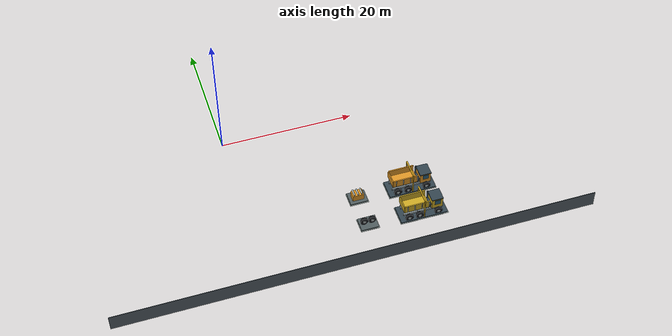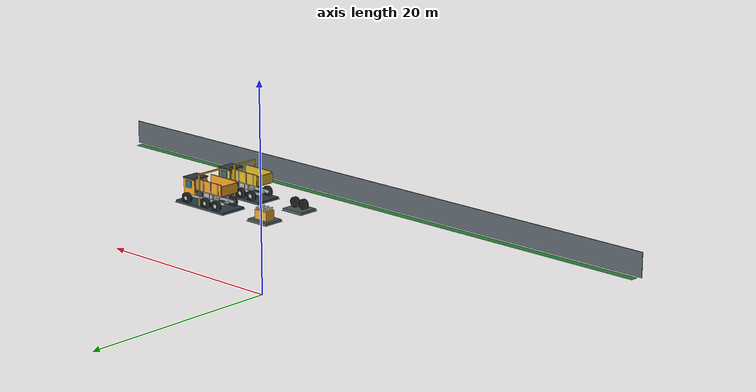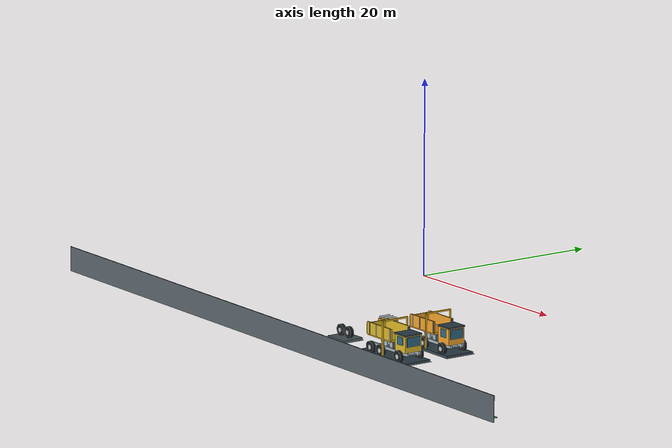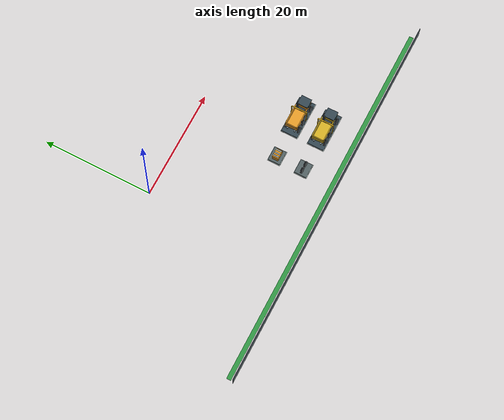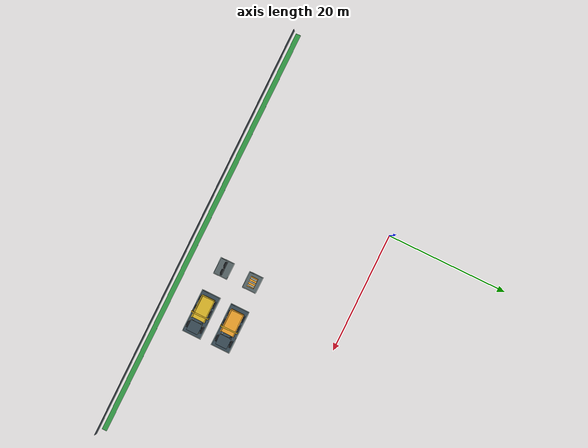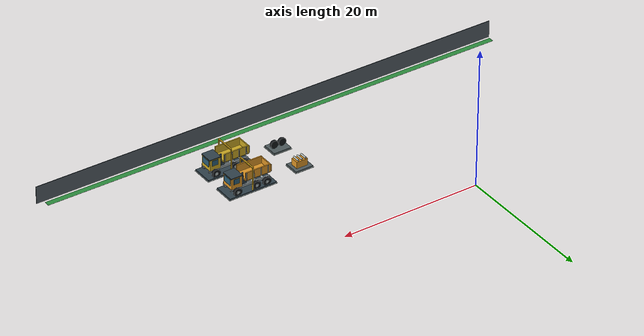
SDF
<sdf version="1.7">
 <world name="warehouse_layout_demo">
  <include><uri>model://sun</uri></include>
  <model name="pedestrian_south_east">
   <static>true</static>
   <pose>12.45 -26.65 0.055 0 0 0</pose>
   <link name="marking">
    <visual name="visual">
     <geometry><box><size>68.9 0.8 0.012</size></box></geometry>
     <material><ambient>0.18 0.57 0.25 1</ambient><diffuse>0.18 0.57 0.25 1</diffuse></material>
    </visual>
   </link>
  </model>
  <model name="south_fence_east">
   <static>true</static>
   <pose>12.85 -27.5 1.25 0 0 0</pose>
   <link name="link">
    <collision name="collision">
     <geometry><box><size>70.1 0.09 2.5</size></box></geometry>
     <surface><friction><ode><mu>0.9</mu><mu2>0.9</mu2></ode></friction></surface>
    </collision>
    <visual name="visual">
     <geometry><box><size>70.1 0.09 2.5</size></box></geometry>
     <material><ambient>0.33 0.37 0.40 1</ambient><diffuse>0.33 0.37 0.40 1</diffuse></material>
    </visual>
   </link>
  </model>
  <model name="vehicle_stage_5_line_1_se_pad">
   <static>true</static>
   <pose>24.0 -21.0 0.012 0 0 0</pose>
   <link name="marking">
    <visual name="visual">
     <geometry><box><size>7.2 3.2 0.012</size></box></geometry>
     <material><ambient>0.72 0.79 0.78 1</ambient><diffuse>0.72 0.79 0.78 1</diffuse></material>
    </visual>
   </link>
  </model>
  <model name="vehicle_stage_5_line_1_se">
   <static>true</static>
   <pose>24.0 -21.0 0 0 0 0</pose>
   <link name="fixture">
    <collision name="collision">
     <pose>0 0 1.9 0 0 0</pose>
     <geometry><box><size>7.0 3.0 3.8</size></box></geometry>
    </collision>
    <visual name="service_platform">
     <pose>0 0 0.11 0 0 0</pose>
     <geometry><box><size>7.0 3.0 0.22</size></box></geometry>
     <material><ambient>0.20 0.27 0.31 1</ambient><diffuse>0.20 0.27 0.31 1</diffuse></material>
    </visual>
    <visual name="chassis_rail_0">
     <pose>0 -0.66 0.85 0 0 0</pose>
     <geometry><box><size>5.9 0.19 0.28</size></box></geometry>
     <material><ambient>0.63 0.68 0.70 1</ambient><diffuse>0.63 0.68 0.70 1</diffuse></material>
    </visual>
    <visual name="haul_tire_0_0">
     <pose>-2.2 -1.18 0.63 1.57079632679 0 0</pose>
     <geometry><cylinder><radius>0.58</radius><length>0.32</length></cylinder></geometry>
     <material><ambient>0.08 0.09 0.10 1</ambient><diffuse>0.08 0.09 0.10 1</diffuse></material>
    </visual>
    <visual name="tire_hub_0_0">
     <pose>-2.2 -1.18 0.63 1.57079632679 0 0</pose>
     <geometry><cylinder><radius>0.23</radius><length>0.34</length></cylinder></geometry>
     <material><ambient>0.70 0.74 0.74 1</ambient><diffuse>0.70 0.74 0.74 1</diffuse></material>
    </visual>
    <visual name="haul_tire_0_1">
     <pose>-0.65 -1.18 0.63 1.57079632679 0 0</pose>
     <geometry><cylinder><radius>0.58</radius><length>0.32</length></cylinder></geometry>
     <material><ambient>0.08 0.09 0.10 1</ambient><diffuse>0.08 0.09 0.10 1</diffuse></material>
    </visual>
    <visual name="tire_hub_0_1">
     <pose>-0.65 -1.18 0.63 1.57079632679 0 0</pose>
     <geometry><cylinder><radius>0.23</radius><length>0.34</length></cylinder></geometry>
     <material><ambient>0.70 0.74 0.74 1</ambient><diffuse>0.70 0.74 0.74 1</diffuse></material>
    </visual>
    <visual name="haul_tire_0_2">
     <pose>2.15 -1.18 0.63 1.57079632679 0 0</pose>
     <geometry><cylinder><radius>0.58</radius><length>0.32</length></cylinder></geometry>
     <material><ambient>0.08 0.09 0.10 1</ambient><diffuse>0.08 0.09 0.10 1</diffuse></material>
    </visual>
    <visual name="tire_hub_0_2">
     <pose>2.15 -1.18 0.63 1.57079632679 0 0</pose>
     <geometry><cylinder><radius>0.23</radius><length>0.34</length></cylinder></geometry>
     <material><ambient>0.70 0.74 0.74 1</ambient><diffuse>0.70 0.74 0.74 1</diffuse></material>
    </visual>
    <visual name="chassis_rail_1">
     <pose>0 0.66 0.85 0 0 0</pose>
     <geometry><box><size>5.9 0.19 0.28</size></box></geometry>
     <material><ambient>0.63 0.68 0.70 1</ambient><diffuse>0.63 0.68 0.70 1</diffuse></material>
    </visual>
    <visual name="haul_tire_1_0">
     <pose>-2.2 1.18 0.63 1.57079632679 0 0</pose>
     <geometry><cylinder><radius>0.58</radius><length>0.32</length></cylinder></geometry>
     <material><ambient>0.08 0.09 0.10 1</ambient><diffuse>0.08 0.09 0.10 1</diffuse></material>
    </visual>
    <visual name="tire_hub_1_0">
     <pose>-2.2 1.18 0.63 1.57079632679 0 0</pose>
     <geometry><cylinder><radius>0.23</radius><length>0.34</length></cylinder></geometry>
     <material><ambient>0.70 0.74 0.74 1</ambient><diffuse>0.70 0.74 0.74 1</diffuse></material>
    </visual>
    <visual name="haul_tire_1_1">
     <pose>-0.65 1.18 0.63 1.57079632679 0 0</pose>
     <geometry><cylinder><radius>0.58</radius><length>0.32</length></cylinder></geometry>
     <material><ambient>0.08 0.09 0.10 1</ambient><diffuse>0.08 0.09 0.10 1</diffuse></material>
    </visual>
    <visual name="tire_hub_1_1">
     <pose>-0.65 1.18 0.63 1.57079632679 0 0</pose>
     <geometry><cylinder><radius>0.23</radius><length>0.34</length></cylinder></geometry>
     <material><ambient>0.70 0.74 0.74 1</ambient><diffuse>0.70 0.74 0.74 1</diffuse></material>
    </visual>
    <visual name="haul_tire_1_2">
     <pose>2.15 1.18 0.63 1.57079632679 0 0</pose>
     <geometry><cylinder><radius>0.58</radius><length>0.32</length></cylinder></geometry>
     <material><ambient>0.08 0.09 0.10 1</ambient><diffuse>0.08 0.09 0.10 1</diffuse></material>
    </visual>
    <visual name="tire_hub_1_2">
     <pose>2.15 1.18 0.63 1.57079632679 0 0</pose>
     <geometry><cylinder><radius>0.23</radius><length>0.34</length></cylinder></geometry>
     <material><ambient>0.70 0.74 0.74 1</ambient><diffuse>0.70 0.74 0.74 1</diffuse></material>
    </visual>
    <visual name="drive_axle_0">
     <pose>-2.2 0 0.68 1.57079632679 0 0</pose>
     <geometry><cylinder><radius>0.15</radius><length>2.38</length></cylinder></geometry>
     <material><ambient>0.63 0.68 0.70 1</ambient><diffuse>0.63 0.68 0.70 1</diffuse></material>
    </visual>
    <visual name="drive_axle_1">
     <pose>-0.65 0 0.68 1.57079632679 0 0</pose>
     <geometry><cylinder><radius>0.15</radius><length>2.38</length></cylinder></geometry>
     <material><ambient>0.63 0.68 0.70 1</ambient><diffuse>0.63 0.68 0.70 1</diffuse></material>
    </visual>
    <visual name="drive_axle_2">
     <pose>2.15 0 0.68 1.57079632679 0 0</pose>
     <geometry><cylinder><radius>0.15</radius><length>2.38</length></cylinder></geometry>
     <material><ambient>0.63 0.68 0.70 1</ambient><diffuse>0.63 0.68 0.70 1</diffuse></material>
    </visual>
    <visual name="diesel_engine">
     <pose>1.15 0 1.26 0 0 0</pose>
     <geometry><box><size>1.38 1.22 0.83</size></box></geometry>
     <material><ambient>0.20 0.27 0.31 1</ambient><diffuse>0.20 0.27 0.31 1</diffuse></material>
    </visual>
    <visual name="gearbox">
     <pose>0.08 0 1.12 0 0 0</pose>
     <geometry><box><size>0.82 0.76 0.6</size></box></geometry>
     <material><ambient>0.63 0.68 0.70 1</ambient><diffuse>0.63 0.68 0.70 1</diffuse></material>
    </visual>
    <visual name="radiator_fan">
     <pose>1.98 0 1.29 1.57079632679 0 0</pose>
     <geometry><cylinder><radius>0.41</radius><length>0.15</length></cylinder></geometry>
     <material><ambient>0.76 0.80 0.79 1</ambient><diffuse>0.76 0.80 0.79 1</diffuse></material>
    </visual>
    <visual name="operator_cab">
     <pose>2.08 0 1.82 0 0 0</pose>
     <geometry><box><size>1.6 1.83 1.62</size></box></geometry>
     <material><ambient>0.82 0.68 0.14 1</ambient><diffuse>0.82 0.68 0.14 1</diffuse></material>
    </visual>
    <visual name="cab_roof">
     <pose>2.08 0 2.66 0 0 0</pose>
     <geometry><box><size>1.72 1.91 0.14</size></box></geometry>
     <material><ambient>0.20 0.27 0.31 1</ambient><diffuse>0.20 0.27 0.31 1</diffuse></material>
    </visual>
    <visual name="windshield">
     <pose>2.91 0 2.03 0 0 0</pose>
     <geometry><box><size>0.045 1.48 0.91</size></box></geometry>
     <material><ambient>0.17 0.38 0.48 1</ambient><diffuse>0.17 0.38 0.48 1</diffuse></material>
    </visual>
    <visual name="exhaust_stack">
     <pose>1.14 0.76 2.15 0.0 0 0</pose>
     <geometry><cylinder><radius>0.12</radius><length>1.57</length></cylinder></geometry>
     <material><ambient>0.20 0.27 0.31 1</ambient><diffuse>0.20 0.27 0.31 1</diffuse></material>
    </visual>
    <visual name="cab_side_glass_0">
     <pose>2.11 -0.95 2.08 0 0 0</pose>
     <geometry><box><size>0.87 0.035 0.76</size></box></geometry>
     <material><ambient>0.17 0.38 0.48 1</ambient><diffuse>0.17 0.38 0.48 1</diffuse></material>
    </visual>
    <visual name="cab_side_glass_1">
     <pose>2.11 0.95 2.08 0 0 0</pose>
     <geometry><box><size>0.87 0.035 0.76</size></box></geometry>
     <material><ambient>0.17 0.38 0.48 1</ambient><diffuse>0.17 0.38 0.48 1</diffuse></material>
    </visual>
    <visual name="dump_bed_floor">
     <pose>-1.01 0 1.78 0 0 0</pose>
     <geometry><box><size>3.75 2.15 0.22</size></box></geometry>
     <material><ambient>0.82 0.68 0.14 1</ambient><diffuse>0.82 0.68 0.14 1</diffuse></material>
    </visual>
    <visual name="dump_bed_side_0">
     <pose>-1.01 -1.05 2.37 0 0 0</pose>
     <geometry><box><size>3.75 0.15 1.15</size></box></geometry>
     <material><ambient>0.82 0.68 0.14 1</ambient><diffuse>0.82 0.68 0.14 1</diffuse></material>
    </visual>
    <visual name="bed_rib_0_0">
     <pose>-2.46 -1.1235000000000002 2.37 0 0 0</pose>
     <geometry><box><size>0.13 0.08 1.1</size></box></geometry>
     <material><ambient>0.63 0.68 0.70 1</ambient><diffuse>0.63 0.68 0.70 1</diffuse></material>
    </visual>
    <visual name="bed_rib_0_1">
     <pose>-1.39 -1.1235000000000002 2.37 0 0 0</pose>
     <geometry><box><size>0.13 0.08 1.1</size></box></geometry>
     <material><ambient>0.63 0.68 0.70 1</ambient><diffuse>0.63 0.68 0.70 1</diffuse></material>
    </visual>
    <visual name="bed_rib_0_2">
     <pose>-0.32 -1.1235000000000002 2.37 0 0 0</pose>
     <geometry><box><size>0.13 0.08 1.1</size></box></geometry>
     <material><ambient>0.63 0.68 0.70 1</ambient><diffuse>0.63 0.68 0.70 1</diffuse></material>
    </visual>
    <visual name="bed_rib_0_3">
     <pose>0.75 -1.1235000000000002 2.37 0 0 0</pose>
     <geometry><box><size>0.13 0.08 1.1</size></box></geometry>
     <material><ambient>0.63 0.68 0.70 1</ambient><diffuse>0.63 0.68 0.70 1</diffuse></material>
    </visual>
    <visual name="dump_bed_side_1">
     <pose>-1.01 1.05 2.37 0 0 0</pose>
     <geometry><box><size>3.75 0.15 1.15</size></box></geometry>
     <material><ambient>0.82 0.68 0.14 1</ambient><diffuse>0.82 0.68 0.14 1</diffuse></material>
    </visual>
    <visual name="bed_rib_1_0">
     <pose>-2.46 1.1235000000000002 2.37 0 0 0</pose>
     <geometry><box><size>0.13 0.08 1.1</size></box></geometry>
     <material><ambient>0.63 0.68 0.70 1</ambient><diffuse>0.63 0.68 0.70 1</diffuse></material>
    </visual>
    <visual name="bed_rib_1_1">
     <pose>-1.39 1.1235000000000002 2.37 0 0 0</pose>
     <geometry><box><size>0.13 0.08 1.1</size></box></geometry>
     <material><ambient>0.63 0.68 0.70 1</ambient><diffuse>0.63 0.68 0.70 1</diffuse></material>
    </visual>
    <visual name="bed_rib_1_2">
     <pose>-0.32 1.1235000000000002 2.37 0 0 0</pose>
     <geometry><box><size>0.13 0.08 1.1</size></box></geometry>
     <material><ambient>0.63 0.68 0.70 1</ambient><diffuse>0.63 0.68 0.70 1</diffuse></material>
    </visual>
    <visual name="bed_rib_1_3">
     <pose>0.75 1.1235000000000002 2.37 0 0 0</pose>
     <geometry><box><size>0.13 0.08 1.1</size></box></geometry>
     <material><ambient>0.63 0.68 0.70 1</ambient><diffuse>0.63 0.68 0.70 1</diffuse></material>
    </visual>
    <visual name="rear_gate">
     <pose>-2.93 0 2.29 0 0 0</pose>
     <geometry><box><size>0.15 2.2 1.0</size></box></geometry>
     <material><ambient>0.82 0.68 0.14 1</ambient><diffuse>0.82 0.68 0.14 1</diffuse></material>
    </visual>
    <visual name="hydraulic_lift_left">
     <pose>-0.78 -0.48 1.37 0.0 0 0</pose>
     <geometry><cylinder><radius>0.18</radius><length>1.0</length></cylinder></geometry>
     <material><ambient>0.63 0.68 0.70 1</ambient><diffuse>0.63 0.68 0.70 1</diffuse></material>
    </visual>
    <visual name="hydraulic_lift_right">
     <pose>-0.78 0.48 1.37 0.0 0 0</pose>
     <geometry><cylinder><radius>0.18</radius><length>1.0</length></cylinder></geometry>
     <material><ambient>0.63 0.68 0.70 1</ambient><diffuse>0.63 0.68 0.70 1</diffuse></material>
    </visual>
    <visual name="test_gantry_post_0">
     <pose>0 -1.42 1.86 0 0 0</pose>
     <geometry><box><size>0.13 0.13 3.52</size></box></geometry>
     <material><ambient>0.91 0.72 0.12 1</ambient><diffuse>0.91 0.72 0.12 1</diffuse></material>
    </visual>
    <visual name="test_gantry_post_1">
     <pose>0 1.42 1.86 0 0 0</pose>
     <geometry><box><size>0.13 0.13 3.52</size></box></geometry>
     <material><ambient>0.91 0.72 0.12 1</ambient><diffuse>0.91 0.72 0.12 1</diffuse></material>
    </visual>
    <visual name="test_gantry_beam">
     <pose>0 0 3.59 0 0 0</pose>
     <geometry><box><size>0.18 2.86 0.13</size></box></geometry>
     <material><ambient>0.91 0.72 0.12 1</ambient><diffuse>0.91 0.72 0.12 1</diffuse></material>
    </visual>
   </link>
  </model>
  <model name="assembly_kit_1_line_1_se_pad">
   <static>true</static>
   <pose>16.0 -21.0 0.012 0 0 0</pose>
   <link name="marking">
    <visual name="visual">
     <geometry><box><size>2.8000000000000003 2.4000000000000004 0.012</size></box></geometry>
     <material><ambient>0.72 0.79 0.78 1</ambient><diffuse>0.72 0.79 0.78 1</diffuse></material>
    </visual>
   </link>
  </model>
  <model name="assembly_kit_1_line_1_se">
   <static>true</static>
   <pose>16.0 -21.0 0 0 0 0</pose>
   <link name="fixture">
    <collision name="collision">
     <pose>0 0 0.95 0 0 0</pose>
     <geometry><box><size>2.6 2.2 1.9</size></box></geometry>
    </collision>
    <visual name="kit_frame">
     <pose>0 0 0.12 0 0 0</pose>
     <geometry><box><size>2.6 2.2 0.24</size></box></geometry>
     <material><ambient>0.32 0.37 0.38 1</ambient><diffuse>0.32 0.37 0.38 1</diffuse></material>
    </visual>
    <visual name="spare_tire_0">
     <pose>-0.6 0 0.8 1.57079632679 0 0</pose>
     <geometry><cylinder><radius>0.55</radius><length>0.35</length></cylinder></geometry>
     <material><ambient>0.08 0.09 0.10 1</ambient><diffuse>0.08 0.09 0.10 1</diffuse></material>
    </visual>
    <visual name="tire_hub_0">
     <pose>-0.6 -0.2 0.8 1.57079632679 0 0</pose>
     <geometry><cylinder><radius>0.22</radius><length>0.05</length></cylinder></geometry>
     <material><ambient>0.69 0.73 0.72 1</ambient><diffuse>0.69 0.73 0.72 1</diffuse></material>
    </visual>
    <visual name="spare_tire_1">
     <pose>0.6 0 0.8 1.57079632679 0 0</pose>
     <geometry><cylinder><radius>0.55</radius><length>0.35</length></cylinder></geometry>
     <material><ambient>0.08 0.09 0.10 1</ambient><diffuse>0.08 0.09 0.10 1</diffuse></material>
    </visual>
    <visual name="tire_hub_1">
     <pose>0.6 -0.2 0.8 1.57079632679 0 0</pose>
     <geometry><cylinder><radius>0.22</radius><length>0.05</length></cylinder></geometry>
     <material><ambient>0.69 0.73 0.72 1</ambient><diffuse>0.69 0.73 0.72 1</diffuse></material>
    </visual>
   </link>
  </model>
  <model name="vehicle_stage_5_line_2_se_pad">
   <static>true</static>
   <pose>24.0 -16.0 0.012 0 0 0</pose>
   <link name="marking">
    <visual name="visual">
     <geometry><box><size>7.2 3.2 0.012</size></box></geometry>
     <material><ambient>0.72 0.79 0.78 1</ambient><diffuse>0.72 0.79 0.78 1</diffuse></material>
    </visual>
   </link>
  </model>
  <model name="vehicle_stage_5_line_2_se">
   <static>true</static>
   <pose>24.0 -16.0 0 0 0 0</pose>
   <link name="fixture">
    <collision name="collision">
     <pose>0 0 1.9 0 0 0</pose>
     <geometry><box><size>7.0 3.0 3.8</size></box></geometry>
    </collision>
    <visual name="service_platform">
     <pose>0 0 0.11 0 0 0</pose>
     <geometry><box><size>7.0 3.0 0.22</size></box></geometry>
     <material><ambient>0.20 0.27 0.31 1</ambient><diffuse>0.20 0.27 0.31 1</diffuse></material>
    </visual>
    <visual name="chassis_rail_0">
     <pose>0 -0.66 0.85 0 0 0</pose>
     <geometry><box><size>5.9 0.19 0.28</size></box></geometry>
     <material><ambient>0.63 0.68 0.70 1</ambient><diffuse>0.63 0.68 0.70 1</diffuse></material>
    </visual>
    <visual name="haul_tire_0_0">
     <pose>-2.2 -1.18 0.63 1.57079632679 0 0</pose>
     <geometry><cylinder><radius>0.58</radius><length>0.32</length></cylinder></geometry>
     <material><ambient>0.08 0.09 0.10 1</ambient><diffuse>0.08 0.09 0.10 1</diffuse></material>
    </visual>
    <visual name="tire_hub_0_0">
     <pose>-2.2 -1.18 0.63 1.57079632679 0 0</pose>
     <geometry><cylinder><radius>0.23</radius><length>0.34</length></cylinder></geometry>
     <material><ambient>0.70 0.74 0.74 1</ambient><diffuse>0.70 0.74 0.74 1</diffuse></material>
    </visual>
    <visual name="haul_tire_0_1">
     <pose>-0.65 -1.18 0.63 1.57079632679 0 0</pose>
     <geometry><cylinder><radius>0.58</radius><length>0.32</length></cylinder></geometry>
     <material><ambient>0.08 0.09 0.10 1</ambient><diffuse>0.08 0.09 0.10 1</diffuse></material>
    </visual>
    <visual name="tire_hub_0_1">
     <pose>-0.65 -1.18 0.63 1.57079632679 0 0</pose>
     <geometry><cylinder><radius>0.23</radius><length>0.34</length></cylinder></geometry>
     <material><ambient>0.70 0.74 0.74 1</ambient><diffuse>0.70 0.74 0.74 1</diffuse></material>
    </visual>
    <visual name="haul_tire_0_2">
     <pose>2.15 -1.18 0.63 1.57079632679 0 0</pose>
     <geometry><cylinder><radius>0.58</radius><length>0.32</length></cylinder></geometry>
     <material><ambient>0.08 0.09 0.10 1</ambient><diffuse>0.08 0.09 0.10 1</diffuse></material>
    </visual>
    <visual name="tire_hub_0_2">
     <pose>2.15 -1.18 0.63 1.57079632679 0 0</pose>
     <geometry><cylinder><radius>0.23</radius><length>0.34</length></cylinder></geometry>
     <material><ambient>0.70 0.74 0.74 1</ambient><diffuse>0.70 0.74 0.74 1</diffuse></material>
    </visual>
    <visual name="chassis_rail_1">
     <pose>0 0.66 0.85 0 0 0</pose>
     <geometry><box><size>5.9 0.19 0.28</size></box></geometry>
     <material><ambient>0.63 0.68 0.70 1</ambient><diffuse>0.63 0.68 0.70 1</diffuse></material>
    </visual>
    <visual name="haul_tire_1_0">
     <pose>-2.2 1.18 0.63 1.57079632679 0 0</pose>
     <geometry><cylinder><radius>0.58</radius><length>0.32</length></cylinder></geometry>
     <material><ambient>0.08 0.09 0.10 1</ambient><diffuse>0.08 0.09 0.10 1</diffuse></material>
    </visual>
    <visual name="tire_hub_1_0">
     <pose>-2.2 1.18 0.63 1.57079632679 0 0</pose>
     <geometry><cylinder><radius>0.23</radius><length>0.34</length></cylinder></geometry>
     <material><ambient>0.70 0.74 0.74 1</ambient><diffuse>0.70 0.74 0.74 1</diffuse></material>
    </visual>
    <visual name="haul_tire_1_1">
     <pose>-0.65 1.18 0.63 1.57079632679 0 0</pose>
     <geometry><cylinder><radius>0.58</radius><length>0.32</length></cylinder></geometry>
     <material><ambient>0.08 0.09 0.10 1</ambient><diffuse>0.08 0.09 0.10 1</diffuse></material>
    </visual>
    <visual name="tire_hub_1_1">
     <pose>-0.65 1.18 0.63 1.57079632679 0 0</pose>
     <geometry><cylinder><radius>0.23</radius><length>0.34</length></cylinder></geometry>
     <material><ambient>0.70 0.74 0.74 1</ambient><diffuse>0.70 0.74 0.74 1</diffuse></material>
    </visual>
    <visual name="haul_tire_1_2">
     <pose>2.15 1.18 0.63 1.57079632679 0 0</pose>
     <geometry><cylinder><radius>0.58</radius><length>0.32</length></cylinder></geometry>
     <material><ambient>0.08 0.09 0.10 1</ambient><diffuse>0.08 0.09 0.10 1</diffuse></material>
    </visual>
    <visual name="tire_hub_1_2">
     <pose>2.15 1.18 0.63 1.57079632679 0 0</pose>
     <geometry><cylinder><radius>0.23</radius><length>0.34</length></cylinder></geometry>
     <material><ambient>0.70 0.74 0.74 1</ambient><diffuse>0.70 0.74 0.74 1</diffuse></material>
    </visual>
    <visual name="drive_axle_0">
     <pose>-2.2 0 0.68 1.57079632679 0 0</pose>
     <geometry><cylinder><radius>0.15</radius><length>2.38</length></cylinder></geometry>
     <material><ambient>0.63 0.68 0.70 1</ambient><diffuse>0.63 0.68 0.70 1</diffuse></material>
    </visual>
    <visual name="drive_axle_1">
     <pose>-0.65 0 0.68 1.57079632679 0 0</pose>
     <geometry><cylinder><radius>0.15</radius><length>2.38</length></cylinder></geometry>
     <material><ambient>0.63 0.68 0.70 1</ambient><diffuse>0.63 0.68 0.70 1</diffuse></material>
    </visual>
    <visual name="drive_axle_2">
     <pose>2.15 0 0.68 1.57079632679 0 0</pose>
     <geometry><cylinder><radius>0.15</radius><length>2.38</length></cylinder></geometry>
     <material><ambient>0.63 0.68 0.70 1</ambient><diffuse>0.63 0.68 0.70 1</diffuse></material>
    </visual>
    <visual name="diesel_engine">
     <pose>1.15 0 1.26 0 0 0</pose>
     <geometry><box><size>1.38 1.22 0.83</size></box></geometry>
     <material><ambient>0.20 0.27 0.31 1</ambient><diffuse>0.20 0.27 0.31 1</diffuse></material>
    </visual>
    <visual name="gearbox">
     <pose>0.08 0 1.12 0 0 0</pose>
     <geometry><box><size>0.82 0.76 0.6</size></box></geometry>
     <material><ambient>0.63 0.68 0.70 1</ambient><diffuse>0.63 0.68 0.70 1</diffuse></material>
    </visual>
    <visual name="radiator_fan">
     <pose>1.98 0 1.29 1.57079632679 0 0</pose>
     <geometry><cylinder><radius>0.41</radius><length>0.15</length></cylinder></geometry>
     <material><ambient>0.76 0.80 0.79 1</ambient><diffuse>0.76 0.80 0.79 1</diffuse></material>
    </visual>
    <visual name="operator_cab">
     <pose>2.08 0 1.82 0 0 0</pose>
     <geometry><box><size>1.6 1.83 1.62</size></box></geometry>
     <material><ambient>0.89 0.60 0.15 1</ambient><diffuse>0.89 0.60 0.15 1</diffuse></material>
    </visual>
    <visual name="cab_roof">
     <pose>2.08 0 2.66 0 0 0</pose>
     <geometry><box><size>1.72 1.91 0.14</size></box></geometry>
     <material><ambient>0.20 0.27 0.31 1</ambient><diffuse>0.20 0.27 0.31 1</diffuse></material>
    </visual>
    <visual name="windshield">
     <pose>2.91 0 2.03 0 0 0</pose>
     <geometry><box><size>0.045 1.48 0.91</size></box></geometry>
     <material><ambient>0.17 0.38 0.48 1</ambient><diffuse>0.17 0.38 0.48 1</diffuse></material>
    </visual>
    <visual name="exhaust_stack">
     <pose>1.14 0.76 2.15 0.0 0 0</pose>
     <geometry><cylinder><radius>0.12</radius><length>1.57</length></cylinder></geometry>
     <material><ambient>0.20 0.27 0.31 1</ambient><diffuse>0.20 0.27 0.31 1</diffuse></material>
    </visual>
    <visual name="cab_side_glass_0">
     <pose>2.11 -0.95 2.08 0 0 0</pose>
     <geometry><box><size>0.87 0.035 0.76</size></box></geometry>
     <material><ambient>0.17 0.38 0.48 1</ambient><diffuse>0.17 0.38 0.48 1</diffuse></material>
    </visual>
    <visual name="cab_side_glass_1">
     <pose>2.11 0.95 2.08 0 0 0</pose>
     <geometry><box><size>0.87 0.035 0.76</size></box></geometry>
     <material><ambient>0.17 0.38 0.48 1</ambient><diffuse>0.17 0.38 0.48 1</diffuse></material>
    </visual>
    <visual name="dump_bed_floor">
     <pose>-1.01 0 1.78 0 0 0</pose>
     <geometry><box><size>3.75 2.15 0.22</size></box></geometry>
     <material><ambient>0.89 0.60 0.15 1</ambient><diffuse>0.89 0.60 0.15 1</diffuse></material>
    </visual>
    <visual name="dump_bed_side_0">
     <pose>-1.01 -1.05 2.37 0 0 0</pose>
     <geometry><box><size>3.75 0.15 1.15</size></box></geometry>
     <material><ambient>0.89 0.60 0.15 1</ambient><diffuse>0.89 0.60 0.15 1</diffuse></material>
    </visual>
    <visual name="bed_rib_0_0">
     <pose>-2.46 -1.1235000000000002 2.37 0 0 0</pose>
     <geometry><box><size>0.13 0.08 1.1</size></box></geometry>
     <material><ambient>0.63 0.68 0.70 1</ambient><diffuse>0.63 0.68 0.70 1</diffuse></material>
    </visual>
    <visual name="bed_rib_0_1">
     <pose>-1.39 -1.1235000000000002 2.37 0 0 0</pose>
     <geometry><box><size>0.13 0.08 1.1</size></box></geometry>
     <material><ambient>0.63 0.68 0.70 1</ambient><diffuse>0.63 0.68 0.70 1</diffuse></material>
    </visual>
    <visual name="bed_rib_0_2">
     <pose>-0.32 -1.1235000000000002 2.37 0 0 0</pose>
     <geometry><box><size>0.13 0.08 1.1</size></box></geometry>
     <material><ambient>0.63 0.68 0.70 1</ambient><diffuse>0.63 0.68 0.70 1</diffuse></material>
    </visual>
    <visual name="bed_rib_0_3">
     <pose>0.75 -1.1235000000000002 2.37 0 0 0</pose>
     <geometry><box><size>0.13 0.08 1.1</size></box></geometry>
     <material><ambient>0.63 0.68 0.70 1</ambient><diffuse>0.63 0.68 0.70 1</diffuse></material>
    </visual>
    <visual name="dump_bed_side_1">
     <pose>-1.01 1.05 2.37 0 0 0</pose>
     <geometry><box><size>3.75 0.15 1.15</size></box></geometry>
     <material><ambient>0.89 0.60 0.15 1</ambient><diffuse>0.89 0.60 0.15 1</diffuse></material>
    </visual>
    <visual name="bed_rib_1_0">
     <pose>-2.46 1.1235000000000002 2.37 0 0 0</pose>
     <geometry><box><size>0.13 0.08 1.1</size></box></geometry>
     <material><ambient>0.63 0.68 0.70 1</ambient><diffuse>0.63 0.68 0.70 1</diffuse></material>
    </visual>
    <visual name="bed_rib_1_1">
     <pose>-1.39 1.1235000000000002 2.37 0 0 0</pose>
     <geometry><box><size>0.13 0.08 1.1</size></box></geometry>
     <material><ambient>0.63 0.68 0.70 1</ambient><diffuse>0.63 0.68 0.70 1</diffuse></material>
    </visual>
    <visual name="bed_rib_1_2">
     <pose>-0.32 1.1235000000000002 2.37 0 0 0</pose>
     <geometry><box><size>0.13 0.08 1.1</size></box></geometry>
     <material><ambient>0.63 0.68 0.70 1</ambient><diffuse>0.63 0.68 0.70 1</diffuse></material>
    </visual>
    <visual name="bed_rib_1_3">
     <pose>0.75 1.1235000000000002 2.37 0 0 0</pose>
     <geometry><box><size>0.13 0.08 1.1</size></box></geometry>
     <material><ambient>0.63 0.68 0.70 1</ambient><diffuse>0.63 0.68 0.70 1</diffuse></material>
    </visual>
    <visual name="rear_gate">
     <pose>-2.93 0 2.29 0 0 0</pose>
     <geometry><box><size>0.15 2.2 1.0</size></box></geometry>
     <material><ambient>0.89 0.60 0.15 1</ambient><diffuse>0.89 0.60 0.15 1</diffuse></material>
    </visual>
    <visual name="hydraulic_lift_left">
     <pose>-0.78 -0.48 1.37 0.0 0 0</pose>
     <geometry><cylinder><radius>0.18</radius><length>1.0</length></cylinder></geometry>
     <material><ambient>0.63 0.68 0.70 1</ambient><diffuse>0.63 0.68 0.70 1</diffuse></material>
    </visual>
    <visual name="hydraulic_lift_right">
     <pose>-0.78 0.48 1.37 0.0 0 0</pose>
     <geometry><cylinder><radius>0.18</radius><length>1.0</length></cylinder></geometry>
     <material><ambient>0.63 0.68 0.70 1</ambient><diffuse>0.63 0.68 0.70 1</diffuse></material>
    </visual>
    <visual name="test_gantry_post_0">
     <pose>0 -1.42 1.86 0 0 0</pose>
     <geometry><box><size>0.13 0.13 3.52</size></box></geometry>
     <material><ambient>0.91 0.72 0.12 1</ambient><diffuse>0.91 0.72 0.12 1</diffuse></material>
    </visual>
    <visual name="test_gantry_post_1">
     <pose>0 1.42 1.86 0 0 0</pose>
     <geometry><box><size>0.13 0.13 3.52</size></box></geometry>
     <material><ambient>0.91 0.72 0.12 1</ambient><diffuse>0.91 0.72 0.12 1</diffuse></material>
    </visual>
    <visual name="test_gantry_beam">
     <pose>0 0 3.59 0 0 0</pose>
     <geometry><box><size>0.18 2.86 0.13</size></box></geometry>
     <material><ambient>0.91 0.72 0.12 1</ambient><diffuse>0.91 0.72 0.12 1</diffuse></material>
    </visual>
   </link>
  </model>
  <model name="assembly_kit_1_line_2_se_pad">
   <static>true</static>
   <pose>16.0 -16.0 0.012 0 0 0</pose>
   <link name="marking">
    <visual name="visual">
     <geometry><box><size>2.8000000000000003 2.4000000000000004 0.012</size></box></geometry>
     <material><ambient>0.72 0.79 0.78 1</ambient><diffuse>0.72 0.79 0.78 1</diffuse></material>
    </visual>
   </link>
  </model>
  <model name="assembly_kit_1_line_2_se">
   <static>true</static>
   <pose>16.0 -16.0 0 0 0 0</pose>
   <link name="fixture">
    <collision name="collision">
     <pose>0 0 0.95 0 0 0</pose>
     <geometry><box><size>2.6 2.2 1.9</size></box></geometry>
    </collision>
    <visual name="kit_frame">
     <pose>0 0 0.12 0 0 0</pose>
     <geometry><box><size>2.6 2.2 0.24</size></box></geometry>
     <material><ambient>0.32 0.37 0.38 1</ambient><diffuse>0.32 0.37 0.38 1</diffuse></material>
    </visual>
    <visual name="engine_crate">
     <pose>0 0 0.7 0 0 0</pose>
     <geometry><box><size>1.65 1.14 1.02</size></box></geometry>
     <material><ambient>0.89 0.60 0.15 1</ambient><diffuse>0.89 0.60 0.15 1</diffuse></material>
    </visual>
    <visual name="pipe_0">
     <pose>-0.55 0 1.38 1.57079632679 0 0</pose>
     <geometry><cylinder><radius>0.12</radius><length>1.1</length></cylinder></geometry>
     <material><ambient>0.69 0.73 0.72 1</ambient><diffuse>0.69 0.73 0.72 1</diffuse></material>
    </visual>
    <visual name="pipe_1">
     <pose>0 0 1.38 1.57079632679 0 0</pose>
     <geometry><cylinder><radius>0.12</radius><length>1.1</length></cylinder></geometry>
     <material><ambient>0.69 0.73 0.72 1</ambient><diffuse>0.69 0.73 0.72 1</diffuse></material>
    </visual>
    <visual name="pipe_2">
     <pose>0.55 0 1.38 1.57079632679 0 0</pose>
     <geometry><cylinder><radius>0.12</radius><length>1.1</length></cylinder></geometry>
     <material><ambient>0.69 0.73 0.72 1</ambient><diffuse>0.69 0.73 0.72 1</diffuse></material>
    </visual>
   </link>
  </model>
 </world>
</sdf>
